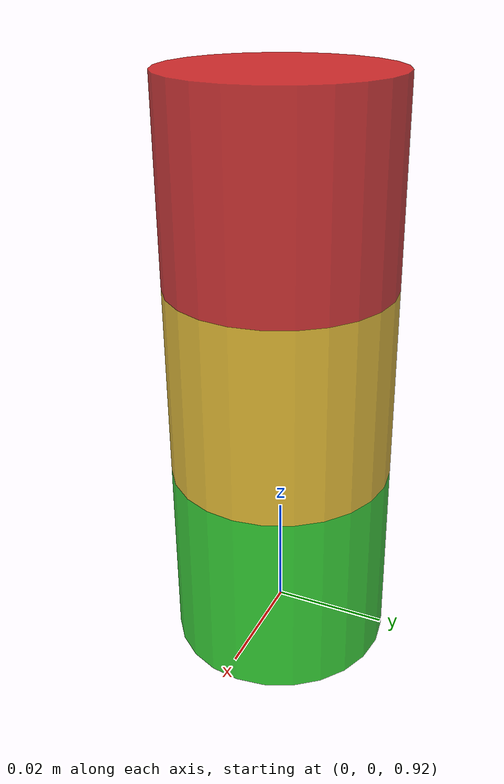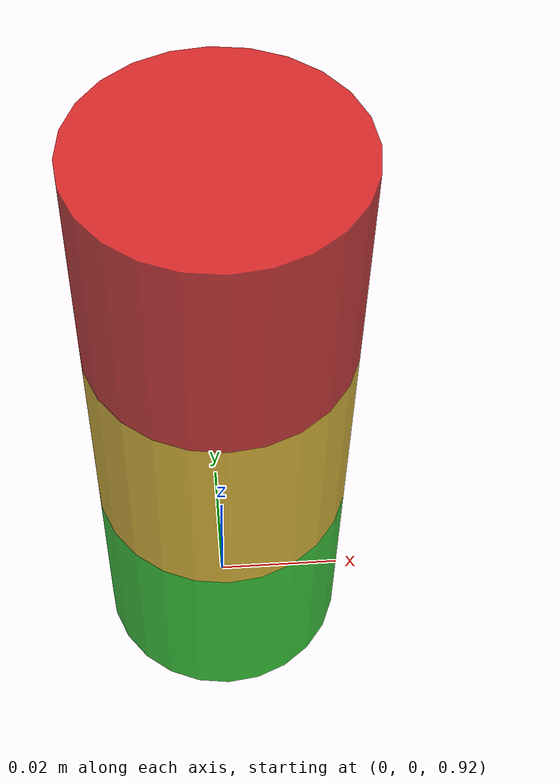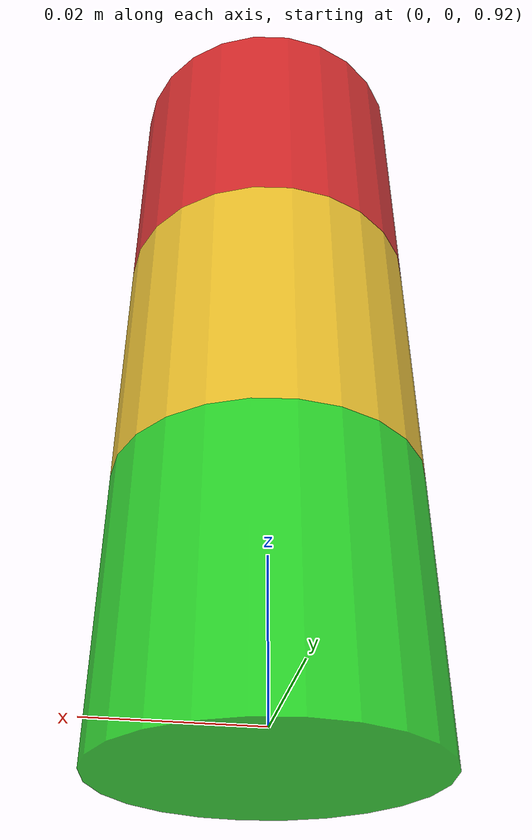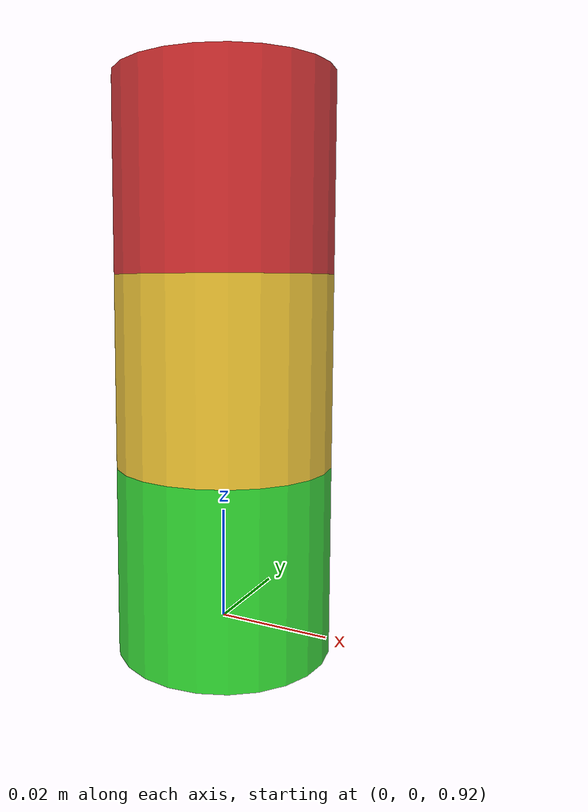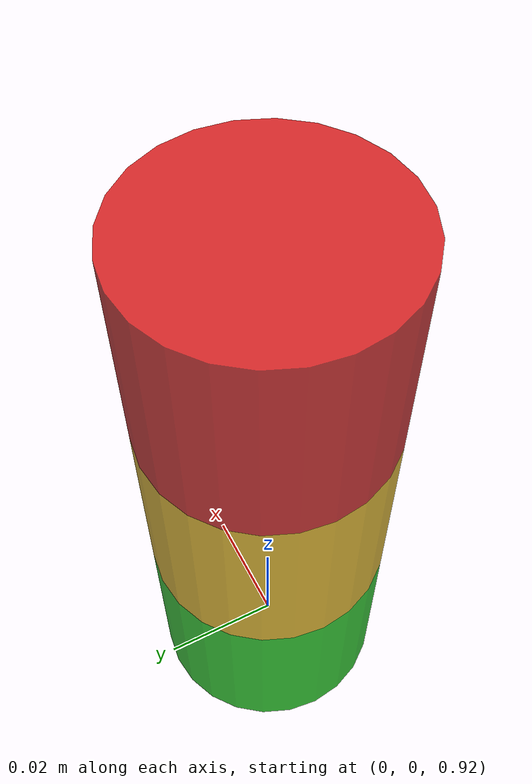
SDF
<?xml version="1.0" ?>
<sdf version="1.4">
  <model name="light_signal">
    <!-- The center is the bottom of the green light -->
    <pose>0 0 0.915 0 0 0 </pose>
    <static>true</static>
    <link name="link">
      <visual name="redon">
        <pose>0 0 0.085 0 0 0 </pose>
	<cast_shadows>false</cast_shadows>
        <geometry>
          <cylinder>
	    <radius>0.0195</radius>
	    <length>0.034</length>
          </cylinder>
        </geometry>
	<material>
	  <ambient>0.8 0 0 0.8</ambient>
	  <diffuse>0.8 0.0 0.0 0.8</diffuse>
	  <emissive>1.0 0.3 0.3 1.0</emissive>
	</material>
      </visual>
      <visual name="yellowon">
        <pose>0 0 0.051 0 0 0 </pose>
	<cast_shadows>false</cast_shadows>
        <geometry>
          <cylinder>
	    <radius>0.0195</radius>
	    <length>0.034</length>
          </cylinder>
        </geometry>
	<material>
	  <ambient>0.9 0.7 0 0.8</ambient>
	  <diffuse>0.9 0.7 0.0 0.8</diffuse>
	  <emissive>1.0 0.9 0.3 1.0</emissive>
	</material>
      </visual>
      <visual name="greenon">
        <pose>0 0 0.017 0 0 0 </pose>
	<cast_shadows>false</cast_shadows>
        <geometry>
          <cylinder>
	    <radius>0.0195</radius>
	    <length>0.034</length>
          </cylinder>
        </geometry>
	<material>
	  <ambient>0.0 0.8 0 0.8</ambient>
	  <diffuse>0.0 0.8 0.0 0.8</diffuse>
	  <emissive>0.3 1.0 0.3 1.0</emissive>
	</material>
     </visual>
    </link>

    <!-- Plugin to control the light signal -->
  </model>
</sdf>
